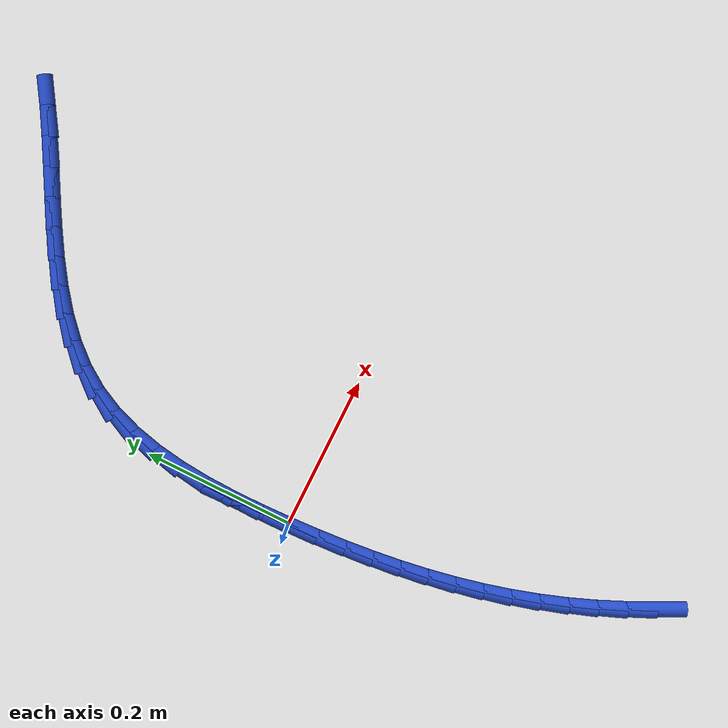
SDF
<sdf version="1.6">
 <world name="default">
  <model name="ground_plane">
   <static>1</static>
   <link name="link">
    <collision name="collision">
     <geometry><plane><normal>0 0 1</normal><size>100 100</size></plane></geometry>
     <surface><friction><ode><mu>100</mu><mu2>50</mu2></ode></friction></surface>
    </collision>
    <visual name="visual">
     <cast_shadows>0</cast_shadows>
     <geometry><plane><normal>0 0 1</normal><size>100 100</size></plane></geometry>
     <material>
      <script><uri>file://media/materials/scripts/gazebo.material</uri><name>Gazebo/WhiteGlow</name></script>
     </material>
    </visual>
   </link>
  </model>
  <model name="line">
   <link name="link_0">
    <pose>3.037798962032823e-17 7.632783294297951e-17 0.01 0 1.57 -1.5330032600161192</pose>
    <collision name="collision">
     <geometry><cylinder><radius>0.01</radius><length>0.08</length></cylinder></geometry>
    </collision>
    <visual name="visual">
     <material>
      <script><name>Gazebo/Blue</name><uri>file://media/materials/scripts/gazebo.material</uri></script>
     </material>
     <geometry><cylinder><radius>0.01</radius><length>0.08</length></cylinder></geometry>
    </visual>
   </link>
   <link name="link_1">
    <pose>-0.0014637493535130366 0.03871219017194916 0.01 0 1.57 -1.5608747347800838</pose>
    <collision name="collision">
     <geometry><cylinder><radius>0.01</radius><length>0.08</length></cylinder></geometry>
    </collision>
    <visual name="visual">
     <material>
      <script><name>Gazebo/Blue</name><uri>file://media/materials/scripts/gazebo.material</uri></script>
     </material>
     <geometry><cylinder><radius>0.01</radius><length>0.08</length></cylinder></geometry>
    </visual>
   </link>
   <link name="link_2">
    <pose>-0.0018502820695263608 0.0776696510497378 0.01 0 1.57 1.5417352929323886</pose>
    <collision name="collision">
     <geometry><cylinder><radius>0.01</radius><length>0.08</length></cylinder></geometry>
    </collision>
    <visual name="visual">
     <material>
      <script><name>Gazebo/Blue</name><uri>file://media/materials/scripts/gazebo.material</uri></script>
     </material>
     <geometry><cylinder><radius>0.01</radius><length>0.08</length></cylinder></geometry>
    </visual>
   </link>
   <link name="link_3">
    <pose>-0.0007233850427675321 0.1164356418366415 0.01 0 1.57 1.4903015447215042</pose>
    <collision name="collision">
     <geometry><cylinder><radius>0.01</radius><length>0.08</length></cylinder></geometry>
    </collision>
    <visual name="visual">
     <material>
      <script><name>Gazebo/Blue</name><uri>file://media/materials/scripts/gazebo.material</uri></script>
     </material>
     <geometry><cylinder><radius>0.01</radius><length>0.08</length></cylinder></geometry>
    </visual>
   </link>
   <link name="link_4">
    <pose>0.0023531548320358626 0.15457342173593558 0.01 0 1.57 1.4245066033565696</pose>
    <collision name="collision">
     <geometry><cylinder><radius>0.01</radius><length>0.08</length></cylinder></geometry>
    </collision>
    <visual name="visual">
     <material>
      <script><name>Gazebo/Blue</name><uri>file://media/materials/scripts/gazebo.material</uri></script>
     </material>
     <geometry><cylinder><radius>0.01</radius><length>0.08</length></cylinder></geometry>
    </visual>
   </link>
   <link name="link_5">
    <pose>0.007815550660156234 0.19164624995089555 0.01 0 1.57 1.341976795140099</pose>
    <collision name="collision">
     <geometry><cylinder><radius>0.01</radius><length>0.08</length></cylinder></geometry>
    </collision>
    <visual name="visual">
     <material>
      <script><name>Gazebo/Blue</name><uri>file://media/materials/scripts/gazebo.material</uri></script>
     </material>
     <geometry><cylinder><radius>0.01</radius><length>0.08</length></cylinder></geometry>
    </visual>
   </link>
   <link name="link_6">
    <pose>0.016100015546866003 0.22721738568479677 0.01 0 1.57 1.240192116064011</pose>
    <collision name="collision">
     <geometry><cylinder><radius>0.01</radius><length>0.08</length></cylinder></geometry>
    </collision>
    <visual name="visual">
     <material>
      <script><name>Gazebo/Blue</name><uri>file://media/materials/scripts/gazebo.material</uri></script>
     </material>
     <geometry><cylinder><radius>0.01</radius><length>0.08</length></cylinder></geometry>
    </visual>
   </link>
   <link name="link_7">
    <pose>0.02764276259743758 0.26085008814091465 0.01 0 1.57 1.1172193816793705</pose>
    <collision name="collision">
     <geometry><cylinder><radius>0.01</radius><length>0.08</length></cylinder></geometry>
    </collision>
    <visual name="visual">
     <material>
      <script><name>Gazebo/Blue</name><uri>file://media/materials/scripts/gazebo.material</uri></script>
     </material>
     <geometry><cylinder><radius>0.01</radius><length>0.08</length></cylinder></geometry>
    </visual>
   </link>
   <link name="link_8">
    <pose>0.042880004917143354 0.2921076165225246 0.01 0 1.57 0.9776191270760713</pose>
    <collision name="collision">
     <geometry><cylinder><radius>0.01</radius><length>0.08</length></cylinder></geometry>
    </collision>
    <visual name="visual">
     <material>
      <script><name>Gazebo/Blue</name><uri>file://media/materials/scripts/gazebo.material</uri></script>
     </material>
     <geometry><cylinder><radius>0.01</radius><length>0.08</length></cylinder></geometry>
    </visual>
   </link>
   <link name="link_9">
    <pose>0.06212613755117945 0.3206556349424241 0.01 0 1.57 0.8487578918379707</pose>
    <collision name="collision">
     <geometry><cylinder><radius>0.01</radius><length>0.08</length></cylinder></geometry>
    </collision>
    <visual name="visual">
     <material>
      <script><name>Gazebo/Blue</name><uri>file://media/materials/scripts/gazebo.material</uri></script>
     </material>
     <geometry><cylinder><radius>0.01</radius><length>0.08</length></cylinder></geometry>
    </visual>
   </link>
   <link name="link_10">
    <pose>0.0850586770127533 0.34669519190882664 0.01 0 1.57 0.741772083795887</pose>
    <collision name="collision">
     <geometry><cylinder><radius>0.01</radius><length>0.08</length></cylinder></geometry>
    </collision>
    <visual name="visual">
     <material>
      <script><name>Gazebo/Blue</name><uri>file://media/materials/scripts/gazebo.material</uri></script>
     </material>
     <geometry><cylinder><radius>0.01</radius><length>0.08</length></cylinder></geometry>
    </visual>
   </link>
   <link name="link_11">
    <pose>0.11114769859648395 0.3706017189336433 0.01 0 1.57 0.6570114576614946</pose>
    <collision name="collision">
     <geometry><cylinder><radius>0.01</radius><length>0.08</length></cylinder></geometry>
    </collision>
    <visual name="visual">
     <material>
      <script><name>Gazebo/Blue</name><uri>file://media/materials/scripts/gazebo.material</uri></script>
     </material>
     <geometry><cylinder><radius>0.01</radius><length>0.08</length></cylinder></geometry>
    </visual>
   </link>
   <link name="link_12">
    <pose>0.13986316464976142 0.39275074247653496 0.01 0 1.57 0.5930588811222213</pose>
    <collision name="collision">
     <geometry><cylinder><radius>0.01</radius><length>0.08</length></cylinder></geometry>
    </collision>
    <visual name="visual">
     <material>
      <script><name>Gazebo/Blue</name><uri>file://media/materials/scripts/gazebo.material</uri></script>
     </material>
     <geometry><cylinder><radius>0.01</radius><length>0.08</length></cylinder></geometry>
    </visual>
   </link>
   <link name="link_13">
    <pose>0.17067503751997587 0.41351778899716307 0.01 0 1.57 0.5479621120039938</pose>
    <collision name="collision">
     <geometry><cylinder><radius>0.01</radius><length>0.08</length></cylinder></geometry>
    </collision>
    <visual name="visual">
     <material>
      <script><name>Gazebo/Blue</name><uri>file://media/materials/scripts/gazebo.material</uri></script>
     </material>
     <geometry><cylinder><radius>0.01</radius><length>0.08</length></cylinder></geometry>
    </visual>
   </link>
   <link name="link_14">
    <pose>0.20305327955451752 0.4332783849551887 0.01 0 1.57 0.519949568220709</pose>
    <collision name="collision">
     <geometry><cylinder><radius>0.01</radius><length>0.08</length></cylinder></geometry>
    </collision>
    <visual name="visual">
     <material>
      <script><name>Gazebo/Blue</name><uri>file://media/materials/scripts/gazebo.material</uri></script>
     </material>
     <geometry><cylinder><radius>0.01</radius><length>0.08</length></cylinder></geometry>
    </visual>
   </link>
   <link name="link_15">
    <pose>0.2364678531007762 0.452408056810273 0.01 0 1.57 0.5077593946100194</pose>
    <collision name="collision">
     <geometry><cylinder><radius>0.01</radius><length>0.08</length></cylinder></geometry>
    </collision>
    <visual name="visual">
     <material>
      <script><name>Gazebo/Blue</name><uri>file://media/materials/scripts/gazebo.material</uri></script>
     </material>
     <geometry><cylinder><radius>0.01</radius><length>0.08</length></cylinder></geometry>
    </visual>
   </link>
   <link name="link_16">
    <pose>0.27038872050614216 0.47128233102207734 0.01 0 1.57 0.5107580890191017</pose>
    <collision name="collision">
     <geometry><cylinder><radius>0.01</radius><length>0.08</length></cylinder></geometry>
    </collision>
    <visual name="visual">
     <material>
      <script><name>Gazebo/Blue</name><uri>file://media/materials/scripts/gazebo.material</uri></script>
     </material>
     <geometry><cylinder><radius>0.01</radius><length>0.08</length></cylinder></geometry>
    </visual>
   </link>
   <link name="link_17">
    <pose>0.3042858441180054 0.49027673405026273 0.01 0 1.57 0.5289640279757442</pose>
    <collision name="collision">
     <geometry><cylinder><radius>0.01</radius><length>0.08</length></cylinder></geometry>
    </collision>
    <visual name="visual">
     <material>
      <script><name>Gazebo/Blue</name><uri>file://media/materials/scripts/gazebo.material</uri></script>
     </material>
     <geometry><cylinder><radius>0.01</radius><length>0.08</length></cylinder></geometry>
    </visual>
   </link>
   <link name="link_18">
    <pose>0.33762918628375616 0.5097667923544904 0.01 0 1.57 0.5630238014019764</pose>
    <collision name="collision">
     <geometry><cylinder><radius>0.01</radius><length>0.08</length></cylinder></geometry>
    </collision>
    <visual name="visual">
     <material>
      <script><name>Gazebo/Blue</name><uri>file://media/materials/scripts/gazebo.material</uri></script>
     </material>
     <geometry><cylinder><radius>0.01</radius><length>0.08</length></cylinder></geometry>
    </visual>
   </link>
   <link name="link_197">
    <pose>0.11161322679712048 -0.46339655031241495 0.01 0 1.57 -1.1109533334471944</pose>
    <collision name="collision">
     <geometry><cylinder><radius>0.01</radius><length>0.08</length></cylinder></geometry>
    </collision>
    <visual name="visual">
     <material>
      <script><name>Gazebo/Blue</name><uri>file://media/materials/scripts/gazebo.material</uri></script>
     </material>
     <geometry><cylinder><radius>0.01</radius><length>0.08</length></cylinder></geometry>
    </visual>
   </link>
   <link name="link_198">
    <pose>0.09511535157387008 -0.4300845515619221 0.01 0 1.57 -1.1537808820120563</pose>
    <collision name="collision">
     <geometry><cylinder><radius>0.01</radius><length>0.08</length></cylinder></geometry>
    </collision>
    <visual name="visual">
     <material>
      <script><name>Gazebo/Blue</name><uri>file://media/materials/scripts/gazebo.material</uri></script>
     </material>
     <geometry><cylinder><radius>0.01</radius><length>0.08</length></cylinder></geometry>
    </visual>
   </link>
   <link name="link_199">
    <pose>0.08006689973447476 -0.3961149460104696 0.01 0 1.57 -1.1950040362940082</pose>
    <collision name="collision">
     <geometry><cylinder><radius>0.01</radius><length>0.08</length></cylinder></geometry>
    </collision>
    <visual name="visual">
     <material>
      <script><name>Gazebo/Blue</name><uri>file://media/materials/scripts/gazebo.material</uri></script>
     </material>
     <geometry><cylinder><radius>0.01</radius><length>0.08</length></cylinder></geometry>
    </visual>
   </link>
   <link name="link_200">
    <pose>0.06645897532659571 -0.3616245052578587 0.01 0 1.57 -1.2348825313247056</pose>
    <collision name="collision">
     <geometry><cylinder><radius>0.01</radius><length>0.08</length></cylinder></geometry>
    </collision>
    <visual name="visual">
     <material>
      <script><name>Gazebo/Blue</name><uri>file://media/materials/scripts/gazebo.material</uri></script>
     </material>
     <geometry><cylinder><radius>0.01</radius><length>0.08</length></cylinder></geometry>
    </visual>
   </link>
   <link name="link_201">
    <pose>0.054282682397894244 -0.326750000903891 0.01 0 1.57 -1.273680313696689</pose>
    <collision name="collision">
     <geometry><cylinder><radius>0.01</radius><length>0.08</length></cylinder></geometry>
    </collision>
    <visual name="visual">
     <material>
      <script><name>Gazebo/Blue</name><uri>file://media/materials/scripts/gazebo.material</uri></script>
     </material>
     <geometry><cylinder><radius>0.01</radius><length>0.08</length></cylinder></geometry>
    </visual>
   </link>
   <link name="link_202">
    <pose>0.04352911485619339 -0.29162818047779243 0.01 0 1.57 -1.3114838096072559</pose>
    <collision name="collision">
     <geometry><cylinder><radius>0.01</radius><length>0.08</length></cylinder></geometry>
    </collision>
    <visual name="visual">
     <material>
      <script><name>Gazebo/Blue</name><uri>file://media/materials/scripts/gazebo.material</uri></script>
     </material>
     <geometry><cylinder><radius>0.01</radius><length>0.08</length></cylinder></geometry>
    </visual>
   </link>
   <link name="link_203">
    <pose>0.03417074357310814 -0.25635158299367933 0.01 0 1.57 -1.3477089836751421</pose>
    <collision name="collision">
     <geometry><cylinder><radius>0.01</radius><length>0.08</length></cylinder></geometry>
    </collision>
    <visual name="visual">
     <material>
      <script><name>Gazebo/Blue</name><uri>file://media/materials/scripts/gazebo.material</uri></script>
     </material>
     <geometry><cylinder><radius>0.01</radius><length>0.08</length></cylinder></geometry>
    </visual>
   </link>
   <link name="link_204">
    <pose>0.026122863647556387 -0.22087702008034737 0.01 0 1.57 -1.381897475793548</pose>
    <collision name="collision">
     <geometry><cylinder><radius>0.01</radius><length>0.08</length></cylinder></geometry>
    </collision>
    <visual name="visual">
     <material>
      <script><name>Gazebo/Blue</name><uri>file://media/materials/scripts/gazebo.material</uri></script>
     </material>
     <geometry><cylinder><radius>0.01</radius><length>0.08</length></cylinder></geometry>
    </visual>
   </link>
   <link name="link_205">
    <pose>0.019289833961637255 -0.18513534229874742 0.01 0 1.57 -1.413726539244011</pose>
    <collision name="collision">
     <geometry><cylinder><radius>0.01</radius><length>0.08</length></cylinder></geometry>
    </collision>
    <visual name="visual">
     <material>
      <script><name>Gazebo/Blue</name><uri>file://media/materials/scripts/gazebo.material</uri></script>
     </material>
     <geometry><cylinder><radius>0.01</radius><length>0.08</length></cylinder></geometry>
    </visual>
   </link>
   <link name="link_206">
    <pose>0.013576013397449863 -0.1490574002098301 0.01 0 1.57 -1.4429389362401</pose>
    <collision name="collision">
     <geometry><cylinder><radius>0.01</radius><length>0.08</length></cylinder></geometry>
    </collision>
    <visual name="visual">
     <material>
      <script><name>Gazebo/Blue</name><uri>file://media/materials/scripts/gazebo.material</uri></script>
     </material>
     <geometry><cylinder><radius>0.01</radius><length>0.08</length></cylinder></geometry>
    </visual>
   </link>
   <link name="link_207">
    <pose>0.008885760837093326 -0.11257404437454602 0.01 0 1.57 -1.4693455606332542</pose>
    <collision name="collision">
     <geometry><cylinder><radius>0.01</radius><length>0.08</length></cylinder></geometry>
    </collision>
    <visual name="visual">
     <material>
      <script><name>Gazebo/Blue</name><uri>file://media/materials/scripts/gazebo.material</uri></script>
     </material>
     <geometry><cylinder><radius>0.01</radius><length>0.08</length></cylinder></geometry>
    </visual>
   </link>
   <link name="link_208">
    <pose>0.0051234351626667585 -0.07561612535384583 0.01 0 1.57 -1.492823731370627</pose>
    <collision name="collision">
     <geometry><cylinder><radius>0.01</radius><length>0.08</length></cylinder></geometry>
    </collision>
    <visual name="visual">
     <material>
      <script><name>Gazebo/Blue</name><uri>file://media/materials/scripts/gazebo.material</uri></script>
     </material>
     <geometry><cylinder><radius>0.01</radius><length>0.08</length></cylinder></geometry>
    </visual>
   </link>
   <link name="link_209">
    <pose>0.0021933952562692227 -0.038114493708679295 0.01 0 1.57 -1.5133121904476967</pose>
    <collision name="collision">
     <geometry><cylinder><radius>0.01</radius><length>0.08</length></cylinder></geometry>
    </collision>
    <visual name="visual">
     <material>
      <script><name>Gazebo/Blue</name><uri>file://media/materials/scripts/gazebo.material</uri></script>
     </material>
     <geometry><cylinder><radius>0.01</radius><length>0.08</length></cylinder></geometry>
    </visual>
   </link>
   <link name="link_210">
    <pose>1.1323136438895487e-17 2.7755575615628914e-16 0.01 0 1.57 -1.5308039614747573</pose>
    <collision name="collision">
     <geometry><cylinder><radius>0.01</radius><length>0.08</length></cylinder></geometry>
    </collision>
    <visual name="visual">
     <material>
      <script><name>Gazebo/Blue</name><uri>file://media/materials/scripts/gazebo.material</uri></script>
     </material>
     <geometry><cylinder><radius>0.01</radius><length>0.08</length></cylinder></geometry>
    </visual>
   </link>
   <link name="link_211">
    <pose>-0.0015523917240419308 0.03879650521124489 0.01 0 1.57 -1.5453381432927202</pose>
    <collision name="collision">
     <geometry><cylinder><radius>0.01</radius><length>0.08</length></cylinder></geometry>
    </collision>
    <visual name="visual">
     <material>
      <script><name>Gazebo/Blue</name><uri>file://media/materials/scripts/gazebo.material</uri></script>
     </material>
     <geometry><cylinder><radius>0.01</radius><length>0.08</length></cylinder></geometry>
    </visual>
   </link>
   <link name="link_212">
    <pose>-0.0025594210337574652 0.07834417136410482 0.01 0 1.57 -1.5381390014372365</pose>
    <collision name="collision">
     <geometry><cylinder><radius>0.01</radius><length>0.08</length></cylinder></geometry>
    </collision>
    <visual name="visual">
     <material>
      <script><name>Gazebo/Blue</name><uri>file://media/materials/scripts/gazebo.material</uri></script>
     </material>
     <geometry><cylinder><radius>0.01</radius><length>0.08</length></cylinder></geometry>
    </visual>
   </link>
  </model>
 </world>
</sdf>
